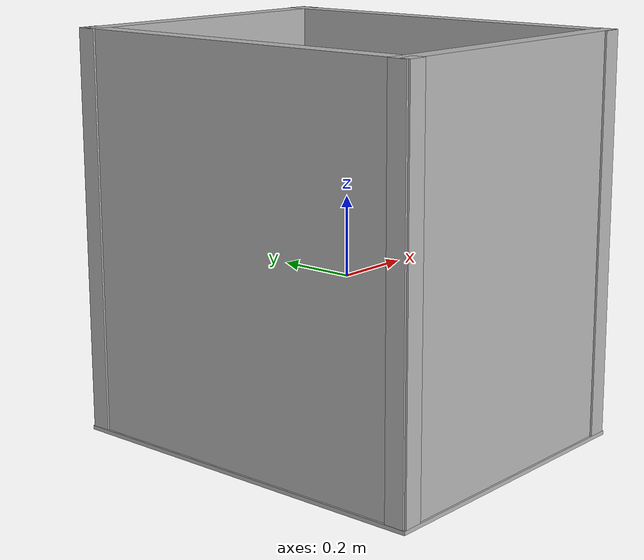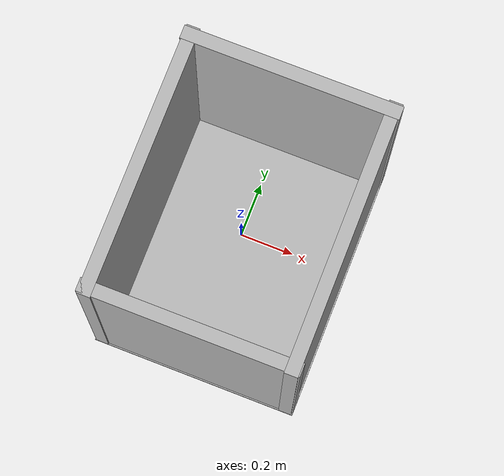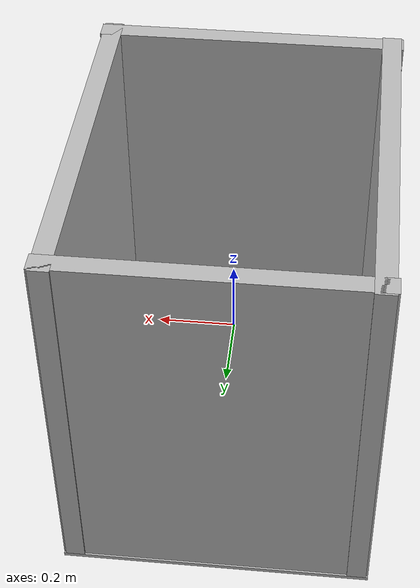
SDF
<?xml version="1.0"?>
<sdf version="1.7">
  <model name="cargo-area">
    <!--
    Axes:
      +X - Pointing towards front (slope)
      +Y - Pointing to left side
      +Z - Up
    Origin:
      (0, 0, 0) at the center bottom of the bin
    -->
    <link name="cargo-area">
      <inertial>
        <mass>18.70</mass>
        <inertia>
          <ixx>0.79</ixx>
          <ixy>0</ixy>
          <ixz>0</ixz>
          <iyy>0.53</iyy>
          <iyz>0</iyz>
          <izz>1.2</izz>
        </inertia>
      </inertial>
      <visual name="visual">
        <pose>0.37 0 0.105 0 0 0</pose>
        <geometry>
          <box>
            <size>0.05 1 1</size>
          </box>
        </geometry>
      </visual>
      <collision name="front">
        <pose>0.37 0 0.105 0 0 0</pose>
        <geometry>
          <box>
            <size>0.05 1 1</size>
          </box>
        </geometry>
      </collision>

      <visual name="back">
        <pose>-0.37 0 0.105 0 0 0</pose>
        <geometry>
          <box>
            <size>0.05 1 1</size>
          </box>
        </geometry>
      </visual>
      <collision name="back">
        <pose>-0.37 0 0.105 0 0 0</pose>
        <geometry>
          <box>
            <size>0.05 1 1</size>
          </box>
        </geometry>
      </collision>
      <visual name="left">
        <pose>0 0.47 0.105 0 0 0</pose>
        <geometry>
          <box>
            <size>0.8 0.05 1</size>
          </box>
        </geometry>
      </visual>
      <collision name="left">
        <pose>0 0.47 0.105 0 0 0</pose>
        <geometry>
          <box>
            <size>0.8 0.05 1</size>
          </box>
        </geometry>
      </collision>
      <visual name="right">
        <pose>0 -0.47 0.105 0 0 0</pose>
        <geometry>
          <box>
            <size>0.8 0.05 1</size>
          </box>
        </geometry>
      </visual>
      <collision name="right">
        <pose>0 -0.47 0.105 0 0 0</pose>
        <geometry>
          <box>
            <size>0.8 0.05 1</size>
          </box>
        </geometry>
      </collision>
      <visual name="bottom">
        <pose>0.0 0.0 -0.4 0 0 0</pose>
        <geometry>
          <box>
            <size>0.80 1 0.010</size>
          </box>
        </geometry>
      </visual>
      <collision name="bottom">
        <pose>0.0 0.0 -0.4 0 0 0</pose>
        <geometry>
          <box>
            <size>0.49 0.63 0.010</size>
          </box>
        </geometry>
      </collision>
    </link>
    <frame name="cargo-area">
      <pose relative_to="cargo-area">0.22 0 0.21 0 0 0</pose>
    </frame>
  </model>
</sdf>
